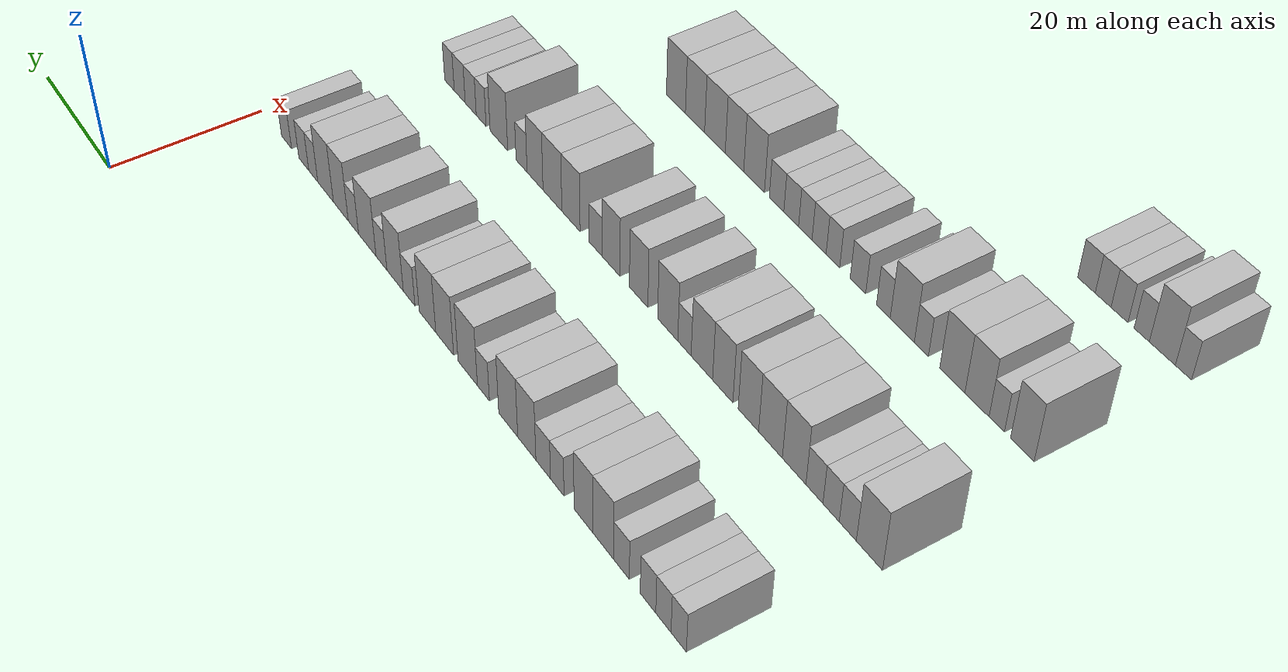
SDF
<sdf version="1.6">
 <world name="default">
  <model name="building_75">
   <static>1</static>
   <pose>25.0000 -93.4786 0 0.000000 0.000000 0.000000</pose>
   <link name="link">
    <pose>0 0 3.00 0 0 0</pose>
    <collision name="collision"><geometry><box><size>10.0000 2.7004 6.0000</size></box></geometry></collision>
    <visual name="visual">
     <cast_shadows>0</cast_shadows>
     <geometry><box><size>10.0000 2.7004 6.0000</size></box></geometry>
     <material>
      <script>
       <uri>model://HANNAS_wall/materials/scripts</uri>
       <uri>model://HANNAS_wall/materials/textures</uri>
       <name>vrc/HANNAS_wall</name>
      </script>
     </material>
    </visual>
   </link>
  </model>
  <model name="building_76">
   <static>1</static>
   <pose>25.0000 -90.7699 0 0.000000 0.000000 0.000000</pose>
   <link name="link">
    <pose>0 0 3.00 0 0 0</pose>
    <collision name="collision"><geometry><box><size>10.0000 2.7170 6.0000</size></box></geometry></collision>
    <visual name="visual">
     <cast_shadows>0</cast_shadows>
     <geometry><box><size>10.0000 2.7170 6.0000</size></box></geometry>
     <material>
      <script>
       <uri>model://HANNAS_wall/materials/scripts</uri>
       <uri>model://HANNAS_wall/materials/textures</uri>
       <name>vrc/HANNAS_wall</name>
      </script>
     </material>
    </visual>
   </link>
  </model>
  <model name="building_77">
   <static>1</static>
   <pose>25.0000 -87.9964 0 0.000000 0.000000 0.000000</pose>
   <link name="link">
    <pose>0 0 3.00 0 0 0</pose>
    <collision name="collision"><geometry><box><size>10.0000 2.8299 6.0000</size></box></geometry></collision>
    <visual name="visual">
     <cast_shadows>0</cast_shadows>
     <geometry><box><size>10.0000 2.8299 6.0000</size></box></geometry>
     <material>
      <script>
       <uri>model://HANNAS_wall/materials/scripts</uri>
       <uri>model://HANNAS_wall/materials/textures</uri>
       <name>vrc/HANNAS_wall</name>
      </script>
     </material>
    </visual>
   </link>
  </model>
  <model name="building_78">
   <static>1</static>
   <pose>25.0000 -83.1338 0 0.000000 0.000000 0.000000</pose>
   <link name="link">
    <pose>0 0 3.00 0 0 0</pose>
    <collision name="collision"><geometry><box><size>10.0000 2.8952 6.0000</size></box></geometry></collision>
    <visual name="visual">
     <cast_shadows>0</cast_shadows>
     <geometry><box><size>10.0000 2.8952 6.0000</size></box></geometry>
     <material>
      <script>
       <uri>model://HANNAS_wall/materials/scripts</uri>
       <uri>model://HANNAS_wall/materials/textures</uri>
       <name>vrc/HANNAS_wall</name>
      </script>
     </material>
    </visual>
   </link>
  </model>
  <model name="building_79">
   <static>1</static>
   <pose>25.0000 -79.7032 0 0.000000 0.000000 0.000000</pose>
   <link name="link">
    <pose>0 0 4.50 0 0 0</pose>
    <collision name="collision"><geometry><box><size>10.0000 3.9661 9.0000</size></box></geometry></collision>
    <visual name="visual">
     <cast_shadows>0</cast_shadows>
     <geometry><box><size>10.0000 3.9661 9.0000</size></box></geometry>
     <material>
      <script>
       <uri>model://HANNAS_wall/materials/scripts</uri>
       <uri>model://HANNAS_wall/materials/textures</uri>
       <name>vrc/HANNAS_wall</name>
      </script>
     </material>
    </visual>
   </link>
  </model>
  <model name="building_80">
   <static>1</static>
   <pose>25.0000 -75.8891 0 0.000000 0.000000 0.000000</pose>
   <link name="link">
    <pose>0 0 4.50 0 0 0</pose>
    <collision name="collision"><geometry><box><size>10.0000 3.6620 9.0000</size></box></geometry></collision>
    <visual name="visual">
     <cast_shadows>0</cast_shadows>
     <geometry><box><size>10.0000 3.6620 9.0000</size></box></geometry>
     <material>
      <script>
       <uri>model://HANNAS_wall/materials/scripts</uri>
       <uri>model://HANNAS_wall/materials/textures</uri>
       <name>vrc/HANNAS_wall</name>
      </script>
     </material>
    </visual>
   </link>
  </model>
  <model name="building_81">
   <static>1</static>
   <pose>25.0000 -70.7052 0 0.000000 0.000000 0.000000</pose>
   <link name="link">
    <pose>0 0 3.00 0 0 0</pose>
    <collision name="collision"><geometry><box><size>10.0000 2.7059 6.0000</size></box></geometry></collision>
    <visual name="visual">
     <cast_shadows>0</cast_shadows>
     <geometry><box><size>10.0000 2.7059 6.0000</size></box></geometry>
     <material>
      <script>
       <uri>model://HANNAS_wall/materials/scripts</uri>
       <uri>model://HANNAS_wall/materials/textures</uri>
       <name>vrc/HANNAS_wall</name>
      </script>
     </material>
    </visual>
   </link>
  </model>
  <model name="building_82">
   <static>1</static>
   <pose>25.0000 -67.8660 0 0.000000 0.000000 0.000000</pose>
   <link name="link">
    <pose>0 0 3.00 0 0 0</pose>
    <collision name="collision"><geometry><box><size>10.0000 2.9725 6.0000</size></box></geometry></collision>
    <visual name="visual">
     <cast_shadows>0</cast_shadows>
     <geometry><box><size>10.0000 2.9725 6.0000</size></box></geometry>
     <material>
      <script>
       <uri>model://HANNAS_wall/materials/scripts</uri>
       <uri>model://HANNAS_wall/materials/textures</uri>
       <name>vrc/HANNAS_wall</name>
      </script>
     </material>
    </visual>
   </link>
  </model>
  <model name="building_83">
   <static>1</static>
   <pose>25.0000 -64.4991 0 0.000000 0.000000 0.000000</pose>
   <link name="link">
    <pose>0 0 4.50 0 0 0</pose>
    <collision name="collision"><geometry><box><size>10.0000 3.7613 9.0000</size></box></geometry></collision>
    <visual name="visual">
     <cast_shadows>0</cast_shadows>
     <geometry><box><size>10.0000 3.7613 9.0000</size></box></geometry>
     <material>
      <script>
       <uri>model://HANNAS_wall/materials/scripts</uri>
       <uri>model://HANNAS_wall/materials/textures</uri>
       <name>vrc/HANNAS_wall</name>
      </script>
     </material>
    </visual>
   </link>
  </model>
  <model name="building_84">
   <static>1</static>
   <pose>25.0000 -60.6083 0 0.000000 0.000000 0.000000</pose>
   <link name="link">
    <pose>0 0 4.50 0 0 0</pose>
    <collision name="collision"><geometry><box><size>10.0000 4.0202 9.0000</size></box></geometry></collision>
    <visual name="visual">
     <cast_shadows>0</cast_shadows>
     <geometry><box><size>10.0000 4.0202 9.0000</size></box></geometry>
     <material>
      <script>
       <uri>model://HANNAS_wall/materials/scripts</uri>
       <uri>model://HANNAS_wall/materials/textures</uri>
       <name>vrc/HANNAS_wall</name>
      </script>
     </material>
    </visual>
   </link>
  </model>
  <model name="building_85">
   <static>1</static>
   <pose>25.0000 -55.2937 0 0.000000 0.000000 0.000000</pose>
   <link name="link">
    <pose>0 0 3.00 0 0 0</pose>
    <collision name="collision"><geometry><box><size>10.0000 2.6091 6.0000</size></box></geometry></collision>
    <visual name="visual">
     <cast_shadows>0</cast_shadows>
     <geometry><box><size>10.0000 2.6091 6.0000</size></box></geometry>
     <material>
      <script>
       <uri>model://HANNAS_wall/materials/scripts</uri>
       <uri>model://HANNAS_wall/materials/textures</uri>
       <name>vrc/HANNAS_wall</name>
      </script>
     </material>
    </visual>
   </link>
  </model>
  <model name="building_86">
   <static>1</static>
   <pose>25.0000 -51.8495 0 0.000000 0.000000 0.000000</pose>
   <link name="link">
    <pose>0 0 4.50 0 0 0</pose>
    <collision name="collision"><geometry><box><size>10.0000 4.2792 9.0000</size></box></geometry></collision>
    <visual name="visual">
     <cast_shadows>0</cast_shadows>
     <geometry><box><size>10.0000 4.2792 9.0000</size></box></geometry>
     <material>
      <script>
       <uri>model://HANNAS_wall/materials/scripts</uri>
       <uri>model://HANNAS_wall/materials/textures</uri>
       <name>vrc/HANNAS_wall</name>
      </script>
     </material>
    </visual>
   </link>
  </model>
  <model name="building_87">
   <static>1</static>
   <pose>25.0000 -46.6806 0 0.000000 0.000000 0.000000</pose>
   <link name="link">
    <pose>0 0 4.50 0 0 0</pose>
    <collision name="collision"><geometry><box><size>10.0000 4.0585 9.0000</size></box></geometry></collision>
    <visual name="visual">
     <cast_shadows>0</cast_shadows>
     <geometry><box><size>10.0000 4.0585 9.0000</size></box></geometry>
     <material>
      <script>
       <uri>model://HANNAS_wall/materials/scripts</uri>
       <uri>model://HANNAS_wall/materials/textures</uri>
       <name>vrc/HANNAS_wall</name>
      </script>
     </material>
    </visual>
   </link>
  </model>
  <model name="building_88">
   <static>1</static>
   <pose>25.0000 -42.7255 0 0.000000 0.000000 0.000000</pose>
   <link name="link">
    <pose>0 0 4.50 0 0 0</pose>
    <collision name="collision"><geometry><box><size>10.0000 3.8517 9.0000</size></box></geometry></collision>
    <visual name="visual">
     <cast_shadows>0</cast_shadows>
     <geometry><box><size>10.0000 3.8517 9.0000</size></box></geometry>
     <material>
      <script>
       <uri>model://HANNAS_wall/materials/scripts</uri>
       <uri>model://HANNAS_wall/materials/textures</uri>
       <name>vrc/HANNAS_wall</name>
      </script>
     </material>
    </visual>
   </link>
  </model>
  <model name="building_89">
   <static>1</static>
   <pose>25.0000 -38.4123 0 0.000000 0.000000 0.000000</pose>
   <link name="link">
    <pose>0 0 3.00 0 0 0</pose>
    <collision name="collision"><geometry><box><size>10.0000 2.7746 6.0000</size></box></geometry></collision>
    <visual name="visual">
     <cast_shadows>0</cast_shadows>
     <geometry><box><size>10.0000 2.7746 6.0000</size></box></geometry>
     <material>
      <script>
       <uri>model://HANNAS_wall/materials/scripts</uri>
       <uri>model://HANNAS_wall/materials/textures</uri>
       <name>vrc/HANNAS_wall</name>
      </script>
     </material>
    </visual>
   </link>
  </model>
  <model name="building_90">
   <static>1</static>
   <pose>25.0000 -35.0561 0 0.000000 0.000000 0.000000</pose>
   <link name="link">
    <pose>0 0 4.50 0 0 0</pose>
    <collision name="collision"><geometry><box><size>10.0000 3.9378 9.0000</size></box></geometry></collision>
    <visual name="visual">
     <cast_shadows>0</cast_shadows>
     <geometry><box><size>10.0000 3.9378 9.0000</size></box></geometry>
     <material>
      <script>
       <uri>model://HANNAS_wall/materials/scripts</uri>
       <uri>model://HANNAS_wall/materials/textures</uri>
       <name>vrc/HANNAS_wall</name>
      </script>
     </material>
    </visual>
   </link>
  </model>
  <model name="building_91">
   <static>1</static>
   <pose>25.0000 -31.7450 0 0.000000 0.000000 0.000000</pose>
   <link name="link">
    <pose>0 0 3.00 0 0 0</pose>
    <collision name="collision"><geometry><box><size>10.0000 2.6844 6.0000</size></box></geometry></collision>
    <visual name="visual">
     <cast_shadows>0</cast_shadows>
     <geometry><box><size>10.0000 2.6844 6.0000</size></box></geometry>
     <material>
      <script>
       <uri>model://HANNAS_wall/materials/scripts</uri>
       <uri>model://HANNAS_wall/materials/textures</uri>
       <name>vrc/HANNAS_wall</name>
      </script>
     </material>
    </visual>
   </link>
  </model>
  <model name="building_92">
   <static>1</static>
   <pose>25.0000 -28.2227 0 0.000000 0.000000 0.000000</pose>
   <link name="link">
    <pose>0 0 4.50 0 0 0</pose>
    <collision name="collision"><geometry><box><size>10.0000 4.3602 9.0000</size></box></geometry></collision>
    <visual name="visual">
     <cast_shadows>0</cast_shadows>
     <geometry><box><size>10.0000 4.3602 9.0000</size></box></geometry>
     <material>
      <script>
       <uri>model://HANNAS_wall/materials/scripts</uri>
       <uri>model://HANNAS_wall/materials/textures</uri>
       <name>vrc/HANNAS_wall</name>
      </script>
     </material>
    </visual>
   </link>
  </model>
  <model name="building_93">
   <static>1</static>
   <pose>25.0000 -24.7274 0 0.000000 0.000000 0.000000</pose>
   <link name="link">
    <pose>0 0 3.00 0 0 0</pose>
    <collision name="collision"><geometry><box><size>10.0000 2.6304 6.0000</size></box></geometry></collision>
    <visual name="visual">
     <cast_shadows>0</cast_shadows>
     <geometry><box><size>10.0000 2.6304 6.0000</size></box></geometry>
     <material>
      <script>
       <uri>model://HANNAS_wall/materials/scripts</uri>
       <uri>model://HANNAS_wall/materials/textures</uri>
       <name>vrc/HANNAS_wall</name>
      </script>
     </material>
    </visual>
   </link>
  </model>
  <model name="building_94">
   <static>1</static>
   <pose>25.0000 -21.4920 0 0.000000 0.000000 0.000000</pose>
   <link name="link">
    <pose>0 0 4.50 0 0 0</pose>
    <collision name="collision"><geometry><box><size>10.0000 3.8403 9.0000</size></box></geometry></collision>
    <visual name="visual">
     <cast_shadows>0</cast_shadows>
     <geometry><box><size>10.0000 3.8403 9.0000</size></box></geometry>
     <material>
      <script>
       <uri>model://HANNAS_wall/materials/scripts</uri>
       <uri>model://HANNAS_wall/materials/textures</uri>
       <name>vrc/HANNAS_wall</name>
      </script>
     </material>
    </visual>
   </link>
  </model>
  <model name="building_95">
   <static>1</static>
   <pose>25.0000 -17.5245 0 0.000000 0.000000 0.000000</pose>
   <link name="link">
    <pose>0 0 4.50 0 0 0</pose>
    <collision name="collision"><geometry><box><size>10.0000 4.0947 9.0000</size></box></geometry></collision>
    <visual name="visual">
     <cast_shadows>0</cast_shadows>
     <geometry><box><size>10.0000 4.0947 9.0000</size></box></geometry>
     <material>
      <script>
       <uri>model://HANNAS_wall/materials/scripts</uri>
       <uri>model://HANNAS_wall/materials/textures</uri>
       <name>vrc/HANNAS_wall</name>
      </script>
     </material>
    </visual>
   </link>
  </model>
  <model name="building_96">
   <static>1</static>
   <pose>25.0000 -14.2664 0 0.000000 0.000000 0.000000</pose>
   <link name="link">
    <pose>0 0 3.00 0 0 0</pose>
    <collision name="collision"><geometry><box><size>10.0000 2.4214 6.0000</size></box></geometry></collision>
    <visual name="visual">
     <cast_shadows>0</cast_shadows>
     <geometry><box><size>10.0000 2.4214 6.0000</size></box></geometry>
     <material>
      <script>
       <uri>model://HANNAS_wall/materials/scripts</uri>
       <uri>model://HANNAS_wall/materials/textures</uri>
       <name>vrc/HANNAS_wall</name>
      </script>
     </material>
    </visual>
   </link>
  </model>
  <model name="building_97">
   <static>1</static>
   <pose>25.0000 -11.7130 0 0.000000 0.000000 0.000000</pose>
   <link name="link">
    <pose>0 0 3.00 0 0 0</pose>
    <collision name="collision"><geometry><box><size>10.0000 2.6855 6.0000</size></box></geometry></collision>
    <visual name="visual">
     <cast_shadows>0</cast_shadows>
     <geometry><box><size>10.0000 2.6855 6.0000</size></box></geometry>
     <material>
      <script>
       <uri>model://HANNAS_wall/materials/scripts</uri>
       <uri>model://HANNAS_wall/materials/textures</uri>
       <name>vrc/HANNAS_wall</name>
      </script>
     </material>
    </visual>
   </link>
  </model>
  <model name="building_98">
   <static>1</static>
   <pose>25.0000 -6.9864 0 0.000000 0.000000 0.000000</pose>
   <link name="link">
    <pose>0 0 3.00 0 0 0</pose>
    <collision name="collision"><geometry><box><size>10.0000 2.7677 6.0000</size></box></geometry></collision>
    <visual name="visual">
     <cast_shadows>0</cast_shadows>
     <geometry><box><size>10.0000 2.7677 6.0000</size></box></geometry>
     <material>
      <script>
       <uri>model://HANNAS_wall/materials/scripts</uri>
       <uri>model://HANNAS_wall/materials/textures</uri>
       <name>vrc/HANNAS_wall</name>
      </script>
     </material>
    </visual>
   </link>
  </model>
  <model name="building_250">
   <static>1</static>
   <pose>47.0000 -94.8000 0 0.000000 0.000000 0.000000</pose>
   <link name="link">
    <pose>0 0 4.50 0 0 0</pose>
    <collision name="collision"><geometry><box><size>10.0000 4.3512 9.0000</size></box></geometry></collision>
    <visual name="visual">
     <cast_shadows>0</cast_shadows>
     <geometry><box><size>10.0000 4.3512 9.0000</size></box></geometry>
     <material>
      <script>
       <uri>model://HANNAS_wall/materials/scripts</uri>
       <uri>model://HANNAS_wall/materials/textures</uri>
       <name>vrc/HANNAS_wall</name>
      </script>
     </material>
    </visual>
   </link>
  </model>
  <model name="building_251">
   <static>1</static>
   <pose>47.0000 -91.1808 0 0.000000 0.000000 0.000000</pose>
   <link name="link">
    <pose>0 0 3.00 0 0 0</pose>
    <collision name="collision"><geometry><box><size>10.0000 2.8873 6.0000</size></box></geometry></collision>
    <visual name="visual">
     <cast_shadows>0</cast_shadows>
     <geometry><box><size>10.0000 2.8873 6.0000</size></box></geometry>
     <material>
      <script>
       <uri>model://HANNAS_wall/materials/scripts</uri>
       <uri>model://HANNAS_wall/materials/textures</uri>
       <name>vrc/HANNAS_wall</name>
      </script>
     </material>
    </visual>
   </link>
  </model>
  <model name="building_252">
   <static>1</static>
   <pose>47.0000 -88.3332 0 0.000000 0.000000 0.000000</pose>
   <link name="link">
    <pose>0 0 3.00 0 0 0</pose>
    <collision name="collision"><geometry><box><size>10.0000 2.8078 6.0000</size></box></geometry></collision>
    <visual name="visual">
     <cast_shadows>0</cast_shadows>
     <geometry><box><size>10.0000 2.8078 6.0000</size></box></geometry>
     <material>
      <script>
       <uri>model://HANNAS_wall/materials/scripts</uri>
       <uri>model://HANNAS_wall/materials/textures</uri>
       <name>vrc/HANNAS_wall</name>
      </script>
     </material>
    </visual>
   </link>
  </model>
  <model name="building_253">
   <static>1</static>
   <pose>47.0000 -85.4402 0 0.000000 0.000000 0.000000</pose>
   <link name="link">
    <pose>0 0 3.00 0 0 0</pose>
    <collision name="collision"><geometry><box><size>10.0000 2.9782 6.0000</size></box></geometry></collision>
    <visual name="visual">
     <cast_shadows>0</cast_shadows>
     <geometry><box><size>10.0000 2.9782 6.0000</size></box></geometry>
     <material>
      <script>
       <uri>model://HANNAS_wall/materials/scripts</uri>
       <uri>model://HANNAS_wall/materials/textures</uri>
       <name>vrc/HANNAS_wall</name>
      </script>
     </material>
    </visual>
   </link>
  </model>
  <model name="building_254">
   <static>1</static>
   <pose>47.0000 -81.8480 0 0.000000 0.000000 0.000000</pose>
   <link name="link">
    <pose>0 0 4.50 0 0 0</pose>
    <collision name="collision"><geometry><box><size>10.0000 4.2063 9.0000</size></box></geometry></collision>
    <visual name="visual">
     <cast_shadows>0</cast_shadows>
     <geometry><box><size>10.0000 4.2063 9.0000</size></box></geometry>
     <material>
      <script>
       <uri>model://HANNAS_wall/materials/scripts</uri>
       <uri>model://HANNAS_wall/materials/textures</uri>
       <name>vrc/HANNAS_wall</name>
      </script>
     </material>
    </visual>
   </link>
  </model>
  <model name="building_255">
   <static>1</static>
   <pose>47.0000 -77.5838 0 0.000000 0.000000 0.000000</pose>
   <link name="link">
    <pose>0 0 4.50 0 0 0</pose>
    <collision name="collision"><geometry><box><size>10.0000 4.3220 9.0000</size></box></geometry></collision>
    <visual name="visual">
     <cast_shadows>0</cast_shadows>
     <geometry><box><size>10.0000 4.3220 9.0000</size></box></geometry>
     <material>
      <script>
       <uri>model://HANNAS_wall/materials/scripts</uri>
       <uri>model://HANNAS_wall/materials/textures</uri>
       <name>vrc/HANNAS_wall</name>
      </script>
     </material>
    </visual>
   </link>
  </model>
  <model name="building_256">
   <static>1</static>
   <pose>47.0000 -73.5142 0 0.000000 0.000000 0.000000</pose>
   <link name="link">
    <pose>0 0 4.50 0 0 0</pose>
    <collision name="collision"><geometry><box><size>10.0000 3.8171 9.0000</size></box></geometry></collision>
    <visual name="visual">
     <cast_shadows>0</cast_shadows>
     <geometry><box><size>10.0000 3.8171 9.0000</size></box></geometry>
     <material>
      <script>
       <uri>model://HANNAS_wall/materials/scripts</uri>
       <uri>model://HANNAS_wall/materials/textures</uri>
       <name>vrc/HANNAS_wall</name>
      </script>
     </material>
    </visual>
   </link>
  </model>
  <model name="building_257">
   <static>1</static>
   <pose>47.0000 -68.6598 0 0.000000 0.000000 0.000000</pose>
   <link name="link">
    <pose>0 0 4.50 0 0 0</pose>
    <collision name="collision"><geometry><box><size>10.0000 3.8918 9.0000</size></box></geometry></collision>
    <visual name="visual">
     <cast_shadows>0</cast_shadows>
     <geometry><box><size>10.0000 3.8918 9.0000</size></box></geometry>
     <material>
      <script>
       <uri>model://HANNAS_wall/materials/scripts</uri>
       <uri>model://HANNAS_wall/materials/textures</uri>
       <name>vrc/HANNAS_wall</name>
      </script>
     </material>
    </visual>
   </link>
  </model>
  <model name="building_258">
   <static>1</static>
   <pose>47.0000 -64.6110 0 0.000000 0.000000 0.000000</pose>
   <link name="link">
    <pose>0 0 4.50 0 0 0</pose>
    <collision name="collision"><geometry><box><size>10.0000 4.2057 9.0000</size></box></geometry></collision>
    <visual name="visual">
     <cast_shadows>0</cast_shadows>
     <geometry><box><size>10.0000 4.2057 9.0000</size></box></geometry>
     <material>
      <script>
       <uri>model://HANNAS_wall/materials/scripts</uri>
       <uri>model://HANNAS_wall/materials/textures</uri>
       <name>vrc/HANNAS_wall</name>
      </script>
     </material>
    </visual>
   </link>
  </model>
  <model name="building_259">
   <static>1</static>
   <pose>47.0000 -61.1842 0 0.000000 0.000000 0.000000</pose>
   <link name="link">
    <pose>0 0 3.00 0 0 0</pose>
    <collision name="collision"><geometry><box><size>10.0000 2.6479 6.0000</size></box></geometry></collision>
    <visual name="visual">
     <cast_shadows>0</cast_shadows>
     <geometry><box><size>10.0000 2.6479 6.0000</size></box></geometry>
     <material>
      <script>
       <uri>model://HANNAS_wall/materials/scripts</uri>
       <uri>model://HANNAS_wall/materials/textures</uri>
       <name>vrc/HANNAS_wall</name>
      </script>
     </material>
    </visual>
   </link>
  </model>
  <model name="building_260">
   <static>1</static>
   <pose>47.0000 -57.8176 0 0.000000 0.000000 0.000000</pose>
   <link name="link">
    <pose>0 0 4.50 0 0 0</pose>
    <collision name="collision"><geometry><box><size>10.0000 4.0853 9.0000</size></box></geometry></collision>
    <visual name="visual">
     <cast_shadows>0</cast_shadows>
     <geometry><box><size>10.0000 4.0853 9.0000</size></box></geometry>
     <material>
      <script>
       <uri>model://HANNAS_wall/materials/scripts</uri>
       <uri>model://HANNAS_wall/materials/textures</uri>
       <name>vrc/HANNAS_wall</name>
      </script>
     </material>
    </visual>
   </link>
  </model>
  <model name="building_261">
   <static>1</static>
   <pose>47.0000 -51.8473 0 0.000000 0.000000 0.000000</pose>
   <link name="link">
    <pose>0 0 4.50 0 0 0</pose>
    <collision name="collision"><geometry><box><size>10.0000 3.8555 9.0000</size></box></geometry></collision>
    <visual name="visual">
     <cast_shadows>0</cast_shadows>
     <geometry><box><size>10.0000 3.8555 9.0000</size></box></geometry>
     <material>
      <script>
       <uri>model://HANNAS_wall/materials/scripts</uri>
       <uri>model://HANNAS_wall/materials/textures</uri>
       <name>vrc/HANNAS_wall</name>
      </script>
     </material>
    </visual>
   </link>
  </model>
  <model name="building_262">
   <static>1</static>
   <pose>47.0000 -45.9751 0 0.000000 0.000000 0.000000</pose>
   <link name="link">
    <pose>0 0 4.50 0 0 0</pose>
    <collision name="collision"><geometry><box><size>10.0000 3.8889 9.0000</size></box></geometry></collision>
    <visual name="visual">
     <cast_shadows>0</cast_shadows>
     <geometry><box><size>10.0000 3.8889 9.0000</size></box></geometry>
     <material>
      <script>
       <uri>model://HANNAS_wall/materials/scripts</uri>
       <uri>model://HANNAS_wall/materials/textures</uri>
       <name>vrc/HANNAS_wall</name>
      </script>
     </material>
    </visual>
   </link>
  </model>
  <model name="building_263">
   <static>1</static>
   <pose>47.0000 -42.6385 0 0.000000 0.000000 0.000000</pose>
   <link name="link">
    <pose>0 0 3.00 0 0 0</pose>
    <collision name="collision"><geometry><box><size>10.0000 2.7843 6.0000</size></box></geometry></collision>
    <visual name="visual">
     <cast_shadows>0</cast_shadows>
     <geometry><box><size>10.0000 2.7843 6.0000</size></box></geometry>
     <material>
      <script>
       <uri>model://HANNAS_wall/materials/scripts</uri>
       <uri>model://HANNAS_wall/materials/textures</uri>
       <name>vrc/HANNAS_wall</name>
      </script>
     </material>
    </visual>
   </link>
  </model>
  <model name="building_264">
   <static>1</static>
   <pose>47.0000 -37.1979 0 0.000000 0.000000 0.000000</pose>
   <link name="link">
    <pose>0 0 4.50 0 0 0</pose>
    <collision name="collision"><geometry><box><size>10.0000 4.0968 9.0000</size></box></geometry></collision>
    <visual name="visual">
     <cast_shadows>0</cast_shadows>
     <geometry><box><size>10.0000 4.0968 9.0000</size></box></geometry>
     <material>
      <script>
       <uri>model://HANNAS_wall/materials/scripts</uri>
       <uri>model://HANNAS_wall/materials/textures</uri>
       <name>vrc/HANNAS_wall</name>
      </script>
     </material>
    </visual>
   </link>
  </model>
  <model name="building_265">
   <static>1</static>
   <pose>47.0000 -32.9941 0 0.000000 0.000000 0.000000</pose>
   <link name="link">
    <pose>0 0 4.50 0 0 0</pose>
    <collision name="collision"><geometry><box><size>10.0000 4.3108 9.0000</size></box></geometry></collision>
    <visual name="visual">
     <cast_shadows>0</cast_shadows>
     <geometry><box><size>10.0000 4.3108 9.0000</size></box></geometry>
     <material>
      <script>
       <uri>model://HANNAS_wall/materials/scripts</uri>
       <uri>model://HANNAS_wall/materials/textures</uri>
       <name>vrc/HANNAS_wall</name>
      </script>
     </material>
    </visual>
   </link>
  </model>
  <model name="building_266">
   <static>1</static>
   <pose>47.0000 -28.9757 0 0.000000 0.000000 0.000000</pose>
   <link name="link">
    <pose>0 0 4.50 0 0 0</pose>
    <collision name="collision"><geometry><box><size>10.0000 3.7261 9.0000</size></box></geometry></collision>
    <visual name="visual">
     <cast_shadows>0</cast_shadows>
     <geometry><box><size>10.0000 3.7261 9.0000</size></box></geometry>
     <material>
      <script>
       <uri>model://HANNAS_wall/materials/scripts</uri>
       <uri>model://HANNAS_wall/materials/textures</uri>
       <name>vrc/HANNAS_wall</name>
      </script>
     </material>
    </visual>
   </link>
  </model>
  <model name="building_267">
   <static>1</static>
   <pose>47.0000 -25.8020 0 0.000000 0.000000 0.000000</pose>
   <link name="link">
    <pose>0 0 3.00 0 0 0</pose>
    <collision name="collision"><geometry><box><size>10.0000 2.6213 6.0000</size></box></geometry></collision>
    <visual name="visual">
     <cast_shadows>0</cast_shadows>
     <geometry><box><size>10.0000 2.6213 6.0000</size></box></geometry>
     <material>
      <script>
       <uri>model://HANNAS_wall/materials/scripts</uri>
       <uri>model://HANNAS_wall/materials/textures</uri>
       <name>vrc/HANNAS_wall</name>
      </script>
     </material>
    </visual>
   </link>
  </model>
  <model name="building_268">
   <static>1</static>
   <pose>47.0000 -20.3544 0 0.000000 0.000000 0.000000</pose>
   <link name="link">
    <pose>0 0 4.50 0 0 0</pose>
    <collision name="collision"><geometry><box><size>10.0000 4.2738 9.0000</size></box></geometry></collision>
    <visual name="visual">
     <cast_shadows>0</cast_shadows>
     <geometry><box><size>10.0000 4.2738 9.0000</size></box></geometry>
     <material>
      <script>
       <uri>model://HANNAS_wall/materials/scripts</uri>
       <uri>model://HANNAS_wall/materials/textures</uri>
       <name>vrc/HANNAS_wall</name>
      </script>
     </material>
    </visual>
   </link>
  </model>
  <model name="building_269">
   <static>1</static>
   <pose>47.0000 -15.9990 0 0.000000 0.000000 0.000000</pose>
   <link name="link">
    <pose>0 0 3.00 0 0 0</pose>
    <collision name="collision"><geometry><box><size>10.0000 2.4370 6.0000</size></box></geometry></collision>
    <visual name="visual">
     <cast_shadows>0</cast_shadows>
     <geometry><box><size>10.0000 2.4370 6.0000</size></box></geometry>
     <material>
      <script>
       <uri>model://HANNAS_wall/materials/scripts</uri>
       <uri>model://HANNAS_wall/materials/textures</uri>
       <name>vrc/HANNAS_wall</name>
      </script>
     </material>
    </visual>
   </link>
  </model>
  <model name="building_270">
   <static>1</static>
   <pose>47.0000 -13.3935 0 0.000000 0.000000 0.000000</pose>
   <link name="link">
    <pose>0 0 3.00 0 0 0</pose>
    <collision name="collision"><geometry><box><size>10.0000 2.7739 6.0000</size></box></geometry></collision>
    <visual name="visual">
     <cast_shadows>0</cast_shadows>
     <geometry><box><size>10.0000 2.7739 6.0000</size></box></geometry>
     <material>
      <script>
       <uri>model://HANNAS_wall/materials/scripts</uri>
       <uri>model://HANNAS_wall/materials/textures</uri>
       <name>vrc/HANNAS_wall</name>
      </script>
     </material>
    </visual>
   </link>
  </model>
  <model name="building_271">
   <static>1</static>
   <pose>47.0000 -10.6076 0 0.000000 0.000000 0.000000</pose>
   <link name="link">
    <pose>0 0 3.00 0 0 0</pose>
    <collision name="collision"><geometry><box><size>10.0000 2.7979 6.0000</size></box></geometry></collision>
    <visual name="visual">
     <cast_shadows>0</cast_shadows>
     <geometry><box><size>10.0000 2.7979 6.0000</size></box></geometry>
     <material>
      <script>
       <uri>model://HANNAS_wall/materials/scripts</uri>
       <uri>model://HANNAS_wall/materials/textures</uri>
       <name>vrc/HANNAS_wall</name>
      </script>
     </material>
    </visual>
   </link>
  </model>
  <model name="building_272">
   <static>1</static>
   <pose>47.0000 -7.9891 0 0.000000 0.000000 0.000000</pose>
   <link name="link">
    <pose>0 0 3.00 0 0 0</pose>
    <collision name="collision"><geometry><box><size>10.0000 2.4390 6.0000</size></box></geometry></collision>
    <visual name="visual">
     <cast_shadows>0</cast_shadows>
     <geometry><box><size>10.0000 2.4390 6.0000</size></box></geometry>
     <material>
      <script>
       <uri>model://HANNAS_wall/materials/scripts</uri>
       <uri>model://HANNAS_wall/materials/textures</uri>
       <name>vrc/HANNAS_wall</name>
      </script>
     </material>
    </visual>
   </link>
  </model>
  <model name="building_439">
   <static>1</static>
   <pose>69.0000 -92.1410 0 0.000000 0.000000 0.000000</pose>
   <link name="link">
    <pose>0 0 4.50 0 0 0</pose>
    <collision name="collision"><geometry><box><size>10.0000 3.8259 9.0000</size></box></geometry></collision>
    <visual name="visual">
     <cast_shadows>0</cast_shadows>
     <geometry><box><size>10.0000 3.8259 9.0000</size></box></geometry>
     <material>
      <script>
       <uri>model://HANNAS_wall/materials/scripts</uri>
       <uri>model://HANNAS_wall/materials/textures</uri>
       <name>vrc/HANNAS_wall</name>
      </script>
     </material>
    </visual>
   </link>
  </model>
  <model name="building_440">
   <static>1</static>
   <pose>69.0000 -87.9584 0 0.000000 0.000000 0.000000</pose>
   <link name="link">
    <pose>0 0 3.00 0 0 0</pose>
    <collision name="collision"><geometry><box><size>10.0000 2.5394 6.0000</size></box></geometry></collision>
    <visual name="visual">
     <cast_shadows>0</cast_shadows>
     <geometry><box><size>10.0000 2.5394 6.0000</size></box></geometry>
     <material>
      <script>
       <uri>model://HANNAS_wall/materials/scripts</uri>
       <uri>model://HANNAS_wall/materials/textures</uri>
       <name>vrc/HANNAS_wall</name>
      </script>
     </material>
    </visual>
   </link>
  </model>
  <model name="building_441">
   <static>1</static>
   <pose>69.0000 -84.6545 0 0.000000 0.000000 0.000000</pose>
   <link name="link">
    <pose>0 0 4.50 0 0 0</pose>
    <collision name="collision"><geometry><box><size>10.0000 4.0684 9.0000</size></box></geometry></collision>
    <visual name="visual">
     <cast_shadows>0</cast_shadows>
     <geometry><box><size>10.0000 4.0684 9.0000</size></box></geometry>
     <material>
      <script>
       <uri>model://HANNAS_wall/materials/scripts</uri>
       <uri>model://HANNAS_wall/materials/textures</uri>
       <name>vrc/HANNAS_wall</name>
      </script>
     </material>
    </visual>
   </link>
  </model>
  <model name="building_442">
   <static>1</static>
   <pose>69.0000 -80.4578 0 0.000000 0.000000 0.000000</pose>
   <link name="link">
    <pose>0 0 4.50 0 0 0</pose>
    <collision name="collision"><geometry><box><size>10.0000 4.3251 9.0000</size></box></geometry></collision>
    <visual name="visual">
     <cast_shadows>0</cast_shadows>
     <geometry><box><size>10.0000 4.3251 9.0000</size></box></geometry>
     <material>
      <script>
       <uri>model://HANNAS_wall/materials/scripts</uri>
       <uri>model://HANNAS_wall/materials/textures</uri>
       <name>vrc/HANNAS_wall</name>
      </script>
     </material>
    </visual>
   </link>
  </model>
  <model name="building_443">
   <static>1</static>
   <pose>69.0000 -75.0456 0 0.000000 0.000000 0.000000</pose>
   <link name="link">
    <pose>0 0 3.00 0 0 0</pose>
    <collision name="collision"><geometry><box><size>10.0000 2.4993 6.0000</size></box></geometry></collision>
    <visual name="visual">
     <cast_shadows>0</cast_shadows>
     <geometry><box><size>10.0000 2.4993 6.0000</size></box></geometry>
     <material>
      <script>
       <uri>model://HANNAS_wall/materials/scripts</uri>
       <uri>model://HANNAS_wall/materials/textures</uri>
       <name>vrc/HANNAS_wall</name>
      </script>
     </material>
    </visual>
   </link>
  </model>
  <model name="building_444">
   <static>1</static>
   <pose>69.0000 -71.6173 0 0.000000 0.000000 0.000000</pose>
   <link name="link">
    <pose>0 0 4.50 0 0 0</pose>
    <collision name="collision"><geometry><box><size>10.0000 4.3572 9.0000</size></box></geometry></collision>
    <visual name="visual">
     <cast_shadows>0</cast_shadows>
     <geometry><box><size>10.0000 4.3572 9.0000</size></box></geometry>
     <material>
      <script>
       <uri>model://HANNAS_wall/materials/scripts</uri>
       <uri>model://HANNAS_wall/materials/textures</uri>
       <name>vrc/HANNAS_wall</name>
      </script>
     </material>
    </visual>
   </link>
  </model>
  <model name="building_445">
   <static>1</static>
   <pose>69.0000 -68.1800 0 0.000000 0.000000 0.000000</pose>
   <link name="link">
    <pose>0 0 3.00 0 0 0</pose>
    <collision name="collision"><geometry><box><size>10.0000 2.5174 6.0000</size></box></geometry></collision>
    <visual name="visual">
     <cast_shadows>0</cast_shadows>
     <geometry><box><size>10.0000 2.5174 6.0000</size></box></geometry>
     <material>
      <script>
       <uri>model://HANNAS_wall/materials/scripts</uri>
       <uri>model://HANNAS_wall/materials/textures</uri>
       <name>vrc/HANNAS_wall</name>
      </script>
     </material>
    </visual>
   </link>
  </model>
  <model name="building_446">
   <static>1</static>
   <pose>69.0000 -63.4566 0 0.000000 0.000000 0.000000</pose>
   <link name="link">
    <pose>0 0 3.00 0 0 0</pose>
    <collision name="collision"><geometry><box><size>10.0000 2.9294 6.0000</size></box></geometry></collision>
    <visual name="visual">
     <cast_shadows>0</cast_shadows>
     <geometry><box><size>10.0000 2.9294 6.0000</size></box></geometry>
     <material>
      <script>
       <uri>model://HANNAS_wall/materials/scripts</uri>
       <uri>model://HANNAS_wall/materials/textures</uri>
       <name>vrc/HANNAS_wall</name>
      </script>
     </material>
    </visual>
   </link>
  </model>
  <model name="building_447">
   <static>1</static>
   <pose>69.0000 -58.6838 0 0.000000 0.000000 0.000000</pose>
   <link name="link">
    <pose>0 0 3.00 0 0 0</pose>
    <collision name="collision"><geometry><box><size>10.0000 2.6162 6.0000</size></box></geometry></collision>
    <visual name="visual">
     <cast_shadows>0</cast_shadows>
     <geometry><box><size>10.0000 2.6162 6.0000</size></box></geometry>
     <material>
      <script>
       <uri>model://HANNAS_wall/materials/scripts</uri>
       <uri>model://HANNAS_wall/materials/textures</uri>
       <name>vrc/HANNAS_wall</name>
      </script>
     </material>
    </visual>
   </link>
  </model>
  <model name="building_448">
   <static>1</static>
   <pose>69.0000 -56.0008 0 0.000000 0.000000 0.000000</pose>
   <link name="link">
    <pose>0 0 3.00 0 0 0</pose>
    <collision name="collision"><geometry><box><size>10.0000 2.7499 6.0000</size></box></geometry></collision>
    <visual name="visual">
     <cast_shadows>0</cast_shadows>
     <geometry><box><size>10.0000 2.7499 6.0000</size></box></geometry>
     <material>
      <script>
       <uri>model://HANNAS_wall/materials/scripts</uri>
       <uri>model://HANNAS_wall/materials/textures</uri>
       <name>vrc/HANNAS_wall</name>
      </script>
     </material>
    </visual>
   </link>
  </model>
  <model name="building_449">
   <static>1</static>
   <pose>69.0000 -53.2929 0 0.000000 0.000000 0.000000</pose>
   <link name="link">
    <pose>0 0 3.00 0 0 0</pose>
    <collision name="collision"><geometry><box><size>10.0000 2.6658 6.0000</size></box></geometry></collision>
    <visual name="visual">
     <cast_shadows>0</cast_shadows>
     <geometry><box><size>10.0000 2.6658 6.0000</size></box></geometry>
     <material>
      <script>
       <uri>model://HANNAS_wall/materials/scripts</uri>
       <uri>model://HANNAS_wall/materials/textures</uri>
       <name>vrc/HANNAS_wall</name>
      </script>
     </material>
    </visual>
   </link>
  </model>
  <model name="building_450">
   <static>1</static>
   <pose>69.0000 -50.4823 0 0.000000 0.000000 0.000000</pose>
   <link name="link">
    <pose>0 0 3.00 0 0 0</pose>
    <collision name="collision"><geometry><box><size>10.0000 2.9553 6.0000</size></box></geometry></collision>
    <visual name="visual">
     <cast_shadows>0</cast_shadows>
     <geometry><box><size>10.0000 2.9553 6.0000</size></box></geometry>
     <material>
      <script>
       <uri>model://HANNAS_wall/materials/scripts</uri>
       <uri>model://HANNAS_wall/materials/textures</uri>
       <name>vrc/HANNAS_wall</name>
      </script>
     </material>
    </visual>
   </link>
  </model>
  <model name="building_451">
   <static>1</static>
   <pose>69.0000 -47.5270 0 0.000000 0.000000 0.000000</pose>
   <link name="link">
    <pose>0 0 3.00 0 0 0</pose>
    <collision name="collision"><geometry><box><size>10.0000 2.9553 6.0000</size></box></geometry></collision>
    <visual name="visual">
     <cast_shadows>0</cast_shadows>
     <geometry><box><size>10.0000 2.9553 6.0000</size></box></geometry>
     <material>
      <script>
       <uri>model://HANNAS_wall/materials/scripts</uri>
       <uri>model://HANNAS_wall/materials/textures</uri>
       <name>vrc/HANNAS_wall</name>
      </script>
     </material>
    </visual>
   </link>
  </model>
  <model name="building_452">
   <static>1</static>
   <pose>69.0000 -42.8894 0 0.000000 0.000000 0.000000</pose>
   <link name="link">
    <pose>0 0 4.50 0 0 0</pose>
    <collision name="collision"><geometry><box><size>10.0000 4.3199 9.0000</size></box></geometry></collision>
    <visual name="visual">
     <cast_shadows>0</cast_shadows>
     <geometry><box><size>10.0000 4.3199 9.0000</size></box></geometry>
     <material>
      <script>
       <uri>model://HANNAS_wall/materials/scripts</uri>
       <uri>model://HANNAS_wall/materials/textures</uri>
       <name>vrc/HANNAS_wall</name>
      </script>
     </material>
    </visual>
   </link>
  </model>
  <model name="building_453">
   <static>1</static>
   <pose>69.0000 -38.7689 0 0.000000 0.000000 0.000000</pose>
   <link name="link">
    <pose>0 0 4.50 0 0 0</pose>
    <collision name="collision"><geometry><box><size>10.0000 3.9211 9.0000</size></box></geometry></collision>
    <visual name="visual">
     <cast_shadows>0</cast_shadows>
     <geometry><box><size>10.0000 3.9211 9.0000</size></box></geometry>
     <material>
      <script>
       <uri>model://HANNAS_wall/materials/scripts</uri>
       <uri>model://HANNAS_wall/materials/textures</uri>
       <name>vrc/HANNAS_wall</name>
      </script>
     </material>
    </visual>
   </link>
  </model>
  <model name="building_454">
   <static>1</static>
   <pose>69.0000 -34.5796 0 0.000000 0.000000 0.000000</pose>
   <link name="link">
    <pose>0 0 4.50 0 0 0</pose>
    <collision name="collision"><geometry><box><size>10.0000 4.4575 9.0000</size></box></geometry></collision>
    <visual name="visual">
     <cast_shadows>0</cast_shadows>
     <geometry><box><size>10.0000 4.4575 9.0000</size></box></geometry>
     <material>
      <script>
       <uri>model://HANNAS_wall/materials/scripts</uri>
       <uri>model://HANNAS_wall/materials/textures</uri>
       <name>vrc/HANNAS_wall</name>
      </script>
     </material>
    </visual>
   </link>
  </model>
  <model name="building_455">
   <static>1</static>
   <pose>69.0000 -30.2311 0 0.000000 0.000000 0.000000</pose>
   <link name="link">
    <pose>0 0 4.50 0 0 0</pose>
    <collision name="collision"><geometry><box><size>10.0000 4.2395 9.0000</size></box></geometry></collision>
    <visual name="visual">
     <cast_shadows>0</cast_shadows>
     <geometry><box><size>10.0000 4.2395 9.0000</size></box></geometry>
     <material>
      <script>
       <uri>model://HANNAS_wall/materials/scripts</uri>
       <uri>model://HANNAS_wall/materials/textures</uri>
       <name>vrc/HANNAS_wall</name>
      </script>
     </material>
    </visual>
   </link>
  </model>
  <model name="building_456">
   <static>1</static>
   <pose>69.0000 -25.9764 0 0.000000 0.000000 0.000000</pose>
   <link name="link">
    <pose>0 0 4.50 0 0 0</pose>
    <collision name="collision"><geometry><box><size>10.0000 4.2699 9.0000</size></box></geometry></collision>
    <visual name="visual">
     <cast_shadows>0</cast_shadows>
     <geometry><box><size>10.0000 4.2699 9.0000</size></box></geometry>
     <material>
      <script>
       <uri>model://HANNAS_wall/materials/scripts</uri>
       <uri>model://HANNAS_wall/materials/textures</uri>
       <name>vrc/HANNAS_wall</name>
      </script>
     </material>
    </visual>
   </link>
  </model>
  <model name="building_629">
   <static>1</static>
   <pose>91.0000 -92.8512 0 0.000000 0.000000 0.000000</pose>
   <link name="link">
    <pose>0 0 3.00 0 0 0</pose>
    <collision name="collision"><geometry><box><size>10.0000 2.5399 6.0000</size></box></geometry></collision>
    <visual name="visual">
     <cast_shadows>0</cast_shadows>
     <geometry><box><size>10.0000 2.5399 6.0000</size></box></geometry>
     <material>
      <script>
       <uri>model://HANNAS_wall/materials/scripts</uri>
       <uri>model://HANNAS_wall/materials/textures</uri>
       <name>vrc/HANNAS_wall</name>
      </script>
     </material>
    </visual>
   </link>
  </model>
  <model name="building_630">
   <static>1</static>
   <pose>91.0000 -89.5029 0 0.000000 0.000000 0.000000</pose>
   <link name="link">
    <pose>0 0 4.50 0 0 0</pose>
    <collision name="collision"><geometry><box><size>10.0000 4.1567 9.0000</size></box></geometry></collision>
    <visual name="visual">
     <cast_shadows>0</cast_shadows>
     <geometry><box><size>10.0000 4.1567 9.0000</size></box></geometry>
     <material>
      <script>
       <uri>model://HANNAS_wall/materials/scripts</uri>
       <uri>model://HANNAS_wall/materials/textures</uri>
       <name>vrc/HANNAS_wall</name>
      </script>
     </material>
    </visual>
   </link>
  </model>
  <model name="building_631">
   <static>1</static>
   <pose>91.0000 -86.1931 0 0.000000 0.000000 0.000000</pose>
   <link name="link">
    <pose>0 0 3.00 0 0 0</pose>
    <collision name="collision"><geometry><box><size>10.0000 2.4629 6.0000</size></box></geometry></collision>
    <visual name="visual">
     <cast_shadows>0</cast_shadows>
     <geometry><box><size>10.0000 2.4629 6.0000</size></box></geometry>
     <material>
      <script>
       <uri>model://HANNAS_wall/materials/scripts</uri>
       <uri>model://HANNAS_wall/materials/textures</uri>
       <name>vrc/HANNAS_wall</name>
      </script>
     </material>
    </visual>
   </link>
  </model>
  <model name="building_632">
   <static>1</static>
   <pose>91.0000 -82.5650 0 0.000000 0.000000 0.000000</pose>
   <link name="link">
    <pose>0 0 3.00 0 0 0</pose>
    <collision name="collision"><geometry><box><size>10.0000 2.7933 6.0000</size></box></geometry></collision>
    <visual name="visual">
     <cast_shadows>0</cast_shadows>
     <geometry><box><size>10.0000 2.7933 6.0000</size></box></geometry>
     <material>
      <script>
       <uri>model://HANNAS_wall/materials/scripts</uri>
       <uri>model://HANNAS_wall/materials/textures</uri>
       <name>vrc/HANNAS_wall</name>
      </script>
     </material>
    </visual>
   </link>
  </model>
  <model name="building_633">
   <static>1</static>
   <pose>91.0000 -79.8433 0 0.000000 0.000000 0.000000</pose>
   <link name="link">
    <pose>0 0 3.00 0 0 0</pose>
    <collision name="collision"><geometry><box><size>10.0000 2.6501 6.0000</size></box></geometry></collision>
    <visual name="visual">
     <cast_shadows>0</cast_shadows>
     <geometry><box><size>10.0000 2.6501 6.0000</size></box></geometry>
     <material>
      <script>
       <uri>model://HANNAS_wall/materials/scripts</uri>
       <uri>model://HANNAS_wall/materials/textures</uri>
       <name>vrc/HANNAS_wall</name>
      </script>
     </material>
    </visual>
   </link>
  </model>
  <model name="building_634">
   <static>1</static>
   <pose>91.0000 -77.0282 0 0.000000 0.000000 0.000000</pose>
   <link name="link">
    <pose>0 0 3.00 0 0 0</pose>
    <collision name="collision"><geometry><box><size>10.0000 2.9802 6.0000</size></box></geometry></collision>
    <visual name="visual">
     <cast_shadows>0</cast_shadows>
     <geometry><box><size>10.0000 2.9802 6.0000</size></box></geometry>
     <material>
      <script>
       <uri>model://HANNAS_wall/materials/scripts</uri>
       <uri>model://HANNAS_wall/materials/textures</uri>
       <name>vrc/HANNAS_wall</name>
      </script>
     </material>
    </visual>
   </link>
  </model>
 </world>
</sdf>
